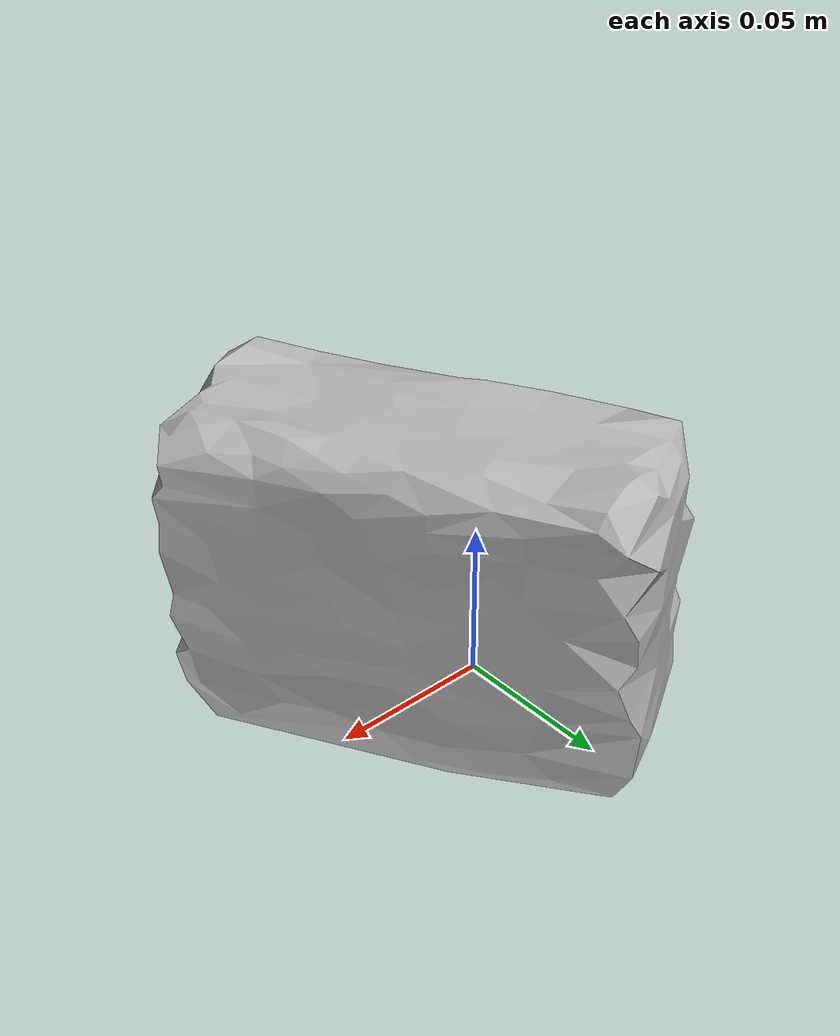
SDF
<?xml version="1.0" ?>
<sdf version="1.4">
  <model name="dove_beauty_bar">
    <link name="dove_beauty_bar_link">
      <inertial>
        <pose>0 0 0 0 0 0</pose>
        <mass>0.08</mass>
      </inertial>

      <visual name="dove_beauty_bar_visual">
        <pose>0 0 0 0 0 0</pose>
        <material>
          <script>
            <uri>model://dove_beauty_bar/materials/scripts</uri>
            <uri>model://dove_beauty_bar/materials/textures</uri>
            <name>dove_beauty_bar</name>
          </script>
        </material>
        <geometry>
          <mesh>
            <uri>model://dove_beauty_bar/meshes/dove_beauty_bar.dae</uri>
          </mesh>
        </geometry>
      </visual>

      <collision name="dove_beauty_bar_collision">
        <pose>0 0 0 0 0 0</pose>
        <geometry>
          <mesh>
            <uri>model://dove_beauty_bar/meshes/dove_beauty_bar.dae</uri>
          </mesh>
        </geometry>
        <surface>
          <friction>
            <ode>
              <mu>0.8</mu>
              <mu2>0.8</mu2>
            </ode>
          </friction>
        </surface>
      </collision>

    </link>
  </model>
</sdf>
